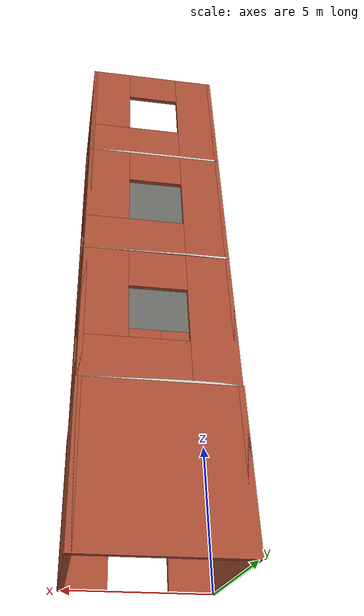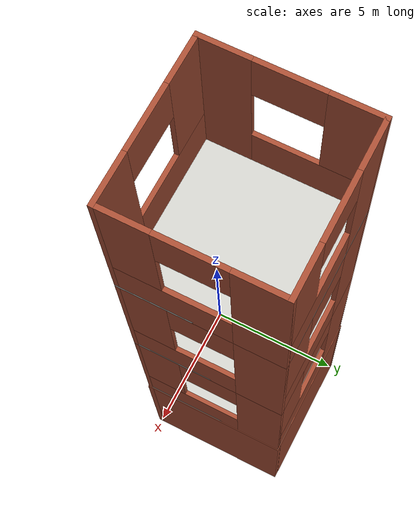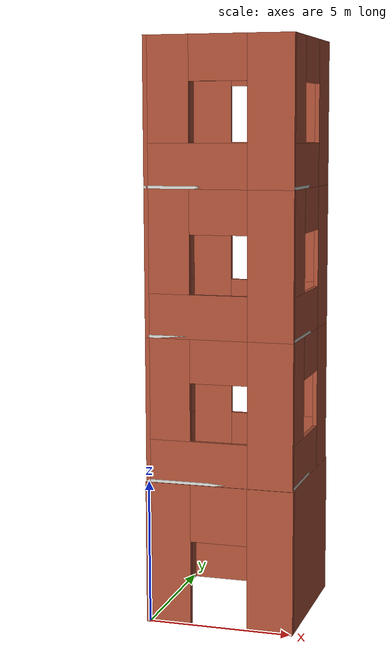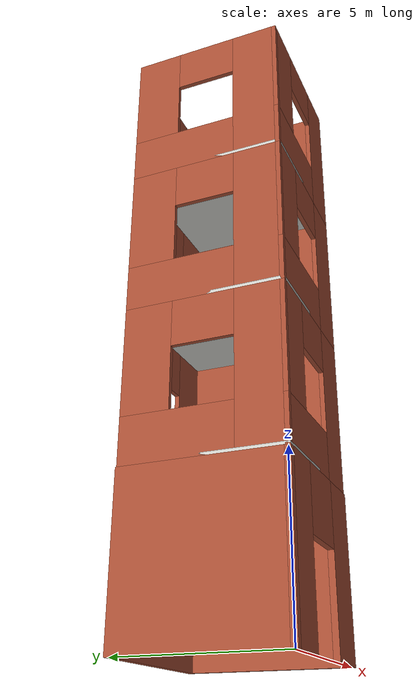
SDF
<?xml version='1.0'?>
<sdf version='1.6'>
  <model name='Challenge3_Building'>
    <pose frame=''>2.5 2.5 0 0 -0 0</pose>
    <link name='Floor_2'>
      <collision name='Floor_2_Collision'>
        <geometry>
          <box>
            <size>5.15 5.15 0.1</size>
          </box>
        </geometry>
        <pose frame=''>0 0 0.05 0 -0 0</pose>
      </collision>
      <visual name='Floor_2_Visual'>
        <pose frame=''>0 0 0.05 0 -0 0</pose>
        <geometry>
          <box>
            <size>5.15 5.15 0.1</size>
          </box>
        </geometry>
        <material>
          <script>
            <uri>file://materials/mbzirc.material</uri>
            <name>Gazebo/CeilingTiled</name>
          </script>
          <ambient>1 1 1 1</ambient>
        </material>
        <meta>
          <layer>1</layer>
        </meta>
      </visual>
      <pose frame=''>0 0 5 0 -0 0</pose>
    </link>
    <link name='Floor_3'>
      <collision name='Floor_3_Collision'>
        <geometry>
          <box>
            <size>5.15 5.15 0.1</size>
          </box>
        </geometry>
        <pose frame=''>0 0 0.05 0 -0 0</pose>
      </collision>
      <visual name='Floor_3_Visual'>
        <pose frame=''>0 0 0.05 0 -0 0</pose>
        <geometry>
          <box>
            <size>5.15 5.15 0.1</size>
          </box>
        </geometry>
        <material>
          <script>
            <uri>file://materials/mbzirc.material</uri>
            <name>Gazebo/CeilingTiled</name>
          </script>
          <ambient>1 1 1 1</ambient>
        </material>
        <meta>
          <layer>2</layer>
        </meta>
      </visual>
      <pose frame=''>0 0 10 0 -0 0</pose>
    </link>
    <link name='Floor_4'>
      <collision name='Floor_4_Collision'>
        <geometry>
          <box>
            <size>5.15 5.15 0.1</size>
          </box>
        </geometry>
        <pose frame=''>0 0 0.05 0 -0 0</pose>
      </collision>
      <visual name='Floor_4_Visual'>
        <pose frame=''>0 0 0.05 0 -0 0</pose>
        <geometry>
          <box>
            <size>5.15 5.15 0.1</size>
          </box>
        </geometry>
        <material>
          <script>
            <uri>file://materials/mbzirc.material</uri>
            <name>Gazebo/CeilingTiled</name>
          </script>
          <ambient>1 1 1 1</ambient>
        </material>
        <meta>
          <layer>3</layer>
        </meta>
      </visual>
      <pose frame=''>0 0 15 0 -0 0</pose>
    </link>
    <link name='Wall_01'>
      <collision name='Wall_01_Collision'>
        <geometry>
          <box>
            <size>5.2 0.2 5</size>
          </box>
        </geometry>
        <pose frame=''>0 0 2.5 0 -0 0</pose>
      </collision>
      <visual name='Wall_01_Visual'>
        <pose frame=''>0 0 2.5 0 -0 0</pose>
        <geometry>
          <box>
            <size>5.2 0.2 5</size>
          </box>
        </geometry>
        <material>
          <script>
            <uri>file://materials/mbzirc.material</uri>
            <name>Gazebo/Bricks</name>
          </script>
          <ambient>1 0.5 0 1</ambient>
        </material>
        <meta>
          <layer>0</layer>
        </meta>
      </visual>
      <pose frame=''>-2.5 0 0 0 -0 1.5708</pose>
    </link>
    <link name='Wall_02'>
      <collision name='Wall_02_Collision'>
        <geometry>
          <box>
            <size>5.2 0.2 5</size>
          </box>
        </geometry>
        <pose frame=''>0 0 2.5 0 -0 0</pose>
      </collision>
      <visual name='Wall_02_Visual'>
        <pose frame=''>0 0 2.5 0 -0 0</pose>
        <geometry>
          <box>
            <size>5.2 0.2 5</size>
          </box>
        </geometry>
        <material>
          <script>
            <uri>file://materials/mbzirc.material</uri>
            <name>Gazebo/Bricks</name>
          </script>
          <ambient>1 0.5 0 1</ambient>
        </material>
        <meta>
          <layer>0</layer>
        </meta>
      </visual>
      <pose frame=''>0 2.5 0 0 -0 0</pose>
    </link>
    <link name='Wall_03'>
      <collision name='Wall_03_Collision'>
        <geometry>
          <box>
            <size>5.2 0.2 5</size>
          </box>
        </geometry>
        <pose frame=''>0 0 2.5 0 -0 0</pose>
      </collision>
      <visual name='Wall_03_Visual'>
        <pose frame=''>0 0 2.5 0 -0 0</pose>
        <geometry>
          <box>
            <size>5.2 0.2 5</size>
          </box>
        </geometry>
        <material>
          <script>
            <uri>file://materials/mbzirc.material</uri>
            <name>Gazebo/Bricks</name>
          </script>
          <ambient>1 0.5 0 1</ambient>
        </material>
        <meta>
          <layer>0</layer>
        </meta>
      </visual>
      <pose frame=''>2.5 0 0 0 0 -1.5708</pose>
    </link>
    <link name='Wall_04'>
      <pose frame=''>0 -2.5 0 0 -0 3.14159</pose>
      <visual name='Wall_04_Visual_0'>
        <pose frame=''>-1.8 0 2.5 0 -0 0</pose>
        <geometry>
          <box>
            <size>1.6 0.2 5</size>
          </box>
        </geometry>
        <material>
          <script>
            <uri>file://materials/mbzirc.material</uri>
            <name>Gazebo/Bricks</name>
          </script>
          <ambient>1 0.5 0 1</ambient>
        </material>
        <meta>
          <layer>0</layer>
        </meta>
      </visual>
      <collision name='Wall_04_Collision_0'>
        <geometry>
          <box>
            <size>1.6 0.2 5</size>
          </box>
        </geometry>
        <pose frame=''>-1.8 0 2.5 0 -0 0</pose>
      </collision>
      <visual name='Wall_04_Visual_1'>
        <pose frame=''>1.8 0 2.5 0 -0 0</pose>
        <geometry>
          <box>
            <size>1.6 0.2 5</size>
          </box>
        </geometry>
        <material>
          <script>
            <uri>file://materials/mbzirc.material</uri>
            <name>Gazebo/Bricks</name>
          </script>
          <ambient>1 0.5 0 1</ambient>
        </material>
        <meta>
          <layer>0</layer>
        </meta>
      </visual>
      <collision name='Wall_04_Collision_1'>
        <geometry>
          <box>
            <size>1.6 0.2 5</size>
          </box>
        </geometry>
        <pose frame=''>1.8 0 2.5 0 -0 0</pose>
      </collision>
      <visual name='Wall_04_Visual_2'>
        <pose frame=''>0 0 4 0 -0 0</pose>
        <geometry>
          <box>
            <size>2 0.2 2</size>
          </box>
        </geometry>
        <material>
          <script>
            <uri>file://materials/mbzirc.material</uri>
            <name>Gazebo/Bricks</name>
          </script>
          <ambient>1 0.5 0 1</ambient>
        </material>
        <meta>
          <layer>0</layer>
        </meta>
      </visual>
      <collision name='Wall_04_Collision_2'>
        <geometry>
          <box>
            <size>2 0.2 2</size>
          </box>
        </geometry>
        <pose frame=''>0 0 4 0 -0 0</pose>
      </collision>
    </link>
    <link name='Wall_05'>
      <pose frame=''>-2.5 0 5 0 -0 1.5708</pose>
      <visual name='Wall_05_Visual_0'>
        <pose frame=''>-1.7875 0 2.5 0 -0 0</pose>
        <geometry>
          <box>
            <size>1.575 0.15 5</size>
          </box>
        </geometry>
        <material>
          <script>
            <uri>file://materials/mbzirc.material</uri>
            <name>Gazebo/Bricks</name>
          </script>
          <ambient>1 0.5 0 1</ambient>
        </material>
        <meta>
          <layer>1</layer>
        </meta>
      </visual>
      <collision name='Wall_05_Collision_0'>
        <geometry>
          <box>
            <size>1.575 0.15 5</size>
          </box>
        </geometry>
        <pose frame=''>-1.7875 0 2.5 0 -0 0</pose>
      </collision>
      <visual name='Wall_05_Visual_1'>
        <pose frame=''>0.7875 0 0.75 0 -0 0</pose>
        <geometry>
          <box>
            <size>3.575 0.15 1.5</size>
          </box>
        </geometry>
        <material>
          <script>
            <uri>file://materials/mbzirc.material</uri>
            <name>Gazebo/Bricks</name>
          </script>
          <ambient>1 0.5 0 1</ambient>
        </material>
        <meta>
          <layer>1</layer>
        </meta>
      </visual>
      <collision name='Wall_05_Collision_1'>
        <geometry>
          <box>
            <size>3.575 0.15 1.5</size>
          </box>
        </geometry>
        <pose frame=''>0.7875 0 0.75 0 -0 0</pose>
      </collision>
      <visual name='Wall_05_Visual_2'>
        <pose frame=''>1.7875 0 3.25 0 -0 0</pose>
        <geometry>
          <box>
            <size>1.575 0.15 3.5</size>
          </box>
        </geometry>
        <material>
          <script>
            <uri>file://materials/mbzirc.material</uri>
            <name>Gazebo/Bricks</name>
          </script>
          <ambient>1 0.5 0 1</ambient>
        </material>
        <meta>
          <layer>1</layer>
        </meta>
      </visual>
      <collision name='Wall_05_Collision_2'>
        <geometry>
          <box>
            <size>1.575 0.15 3.5</size>
          </box>
        </geometry>
        <pose frame=''>1.7875 0 3.25 0 -0 0</pose>
      </collision>
      <visual name='Wall_05_Visual_3'>
        <pose frame=''>0 0 4.25 0 -0 0</pose>
        <geometry>
          <box>
            <size>2 0.15 1.5</size>
          </box>
        </geometry>
        <material>
          <script>
            <uri>file://materials/mbzirc.material</uri>
            <name>Gazebo/Bricks</name>
          </script>
          <ambient>1 0.5 0 1</ambient>
        </material>
        <meta>
          <layer>1</layer>
        </meta>
      </visual>
      <collision name='Wall_05_Collision_3'>
        <geometry>
          <box>
            <size>2 0.15 1.5</size>
          </box>
        </geometry>
        <pose frame=''>0 0 4.25 0 -0 0</pose>
      </collision>
    </link>
    <link name='Wall_06'>
      <pose frame=''>0 2.5 5 0 -0 0</pose>
      <visual name='Wall_06_Visual_0'>
        <pose frame=''>-1.7875 0 2.5 0 -0 0</pose>
        <geometry>
          <box>
            <size>1.575 0.15 5</size>
          </box>
        </geometry>
        <material>
          <script>
            <uri>file://materials/mbzirc.material</uri>
            <name>Gazebo/Bricks</name>
          </script>
          <ambient>1 0.5 0 1</ambient>
        </material>
        <meta>
          <layer>1</layer>
        </meta>
      </visual>
      <collision name='Wall_06_Collision_0'>
        <geometry>
          <box>
            <size>1.575 0.15 5</size>
          </box>
        </geometry>
        <pose frame=''>-1.7875 0 2.5 0 -0 0</pose>
      </collision>
      <visual name='Wall_06_Visual_1'>
        <pose frame=''>0.7875 0 0.75 0 -0 0</pose>
        <geometry>
          <box>
            <size>3.575 0.15 1.5</size>
          </box>
        </geometry>
        <material>
          <script>
            <uri>file://materials/mbzirc.material</uri>
            <name>Gazebo/Bricks</name>
          </script>
          <ambient>1 0.5 0 1</ambient>
        </material>
        <meta>
          <layer>1</layer>
        </meta>
      </visual>
      <collision name='Wall_06_Collision_1'>
        <geometry>
          <box>
            <size>3.575 0.15 1.5</size>
          </box>
        </geometry>
        <pose frame=''>0.7875 0 0.75 0 -0 0</pose>
      </collision>
      <visual name='Wall_06_Visual_2'>
        <pose frame=''>1.7875 0 3.25 0 -0 0</pose>
        <geometry>
          <box>
            <size>1.575 0.15 3.5</size>
          </box>
        </geometry>
        <material>
          <script>
            <uri>file://materials/mbzirc.material</uri>
            <name>Gazebo/Bricks</name>
          </script>
          <ambient>1 0.5 0 1</ambient>
        </material>
        <meta>
          <layer>1</layer>
        </meta>
      </visual>
      <collision name='Wall_06_Collision_2'>
        <geometry>
          <box>
            <size>1.575 0.15 3.5</size>
          </box>
        </geometry>
        <pose frame=''>1.7875 0 3.25 0 -0 0</pose>
      </collision>
      <visual name='Wall_06_Visual_3'>
        <pose frame=''>0 0 4.25 0 -0 0</pose>
        <geometry>
          <box>
            <size>2 0.15 1.5</size>
          </box>
        </geometry>
        <material>
          <script>
            <uri>file://materials/mbzirc.material</uri>
            <name>Gazebo/Bricks</name>
          </script>
          <ambient>1 0.5 0 1</ambient>
        </material>
        <meta>
          <layer>1</layer>
        </meta>
      </visual>
      <collision name='Wall_06_Collision_3'>
        <geometry>
          <box>
            <size>2 0.15 1.5</size>
          </box>
        </geometry>
        <pose frame=''>0 0 4.25 0 -0 0</pose>
      </collision>
    </link>
    <link name='Wall_07'>
      <pose frame=''>2.5 0 5 0 0 -1.5708</pose>
      <visual name='Wall_07_Visual_0'>
        <pose frame=''>-1.7875 0 2.5 0 -0 0</pose>
        <geometry>
          <box>
            <size>1.575 0.15 5</size>
          </box>
        </geometry>
        <material>
          <script>
            <uri>file://materials/mbzirc.material</uri>
            <name>Gazebo/Bricks</name>
          </script>
          <ambient>1 0.5 0 1</ambient>
        </material>
        <meta>
          <layer>1</layer>
        </meta>
      </visual>
      <collision name='Wall_07_Collision_0'>
        <geometry>
          <box>
            <size>1.575 0.15 5</size>
          </box>
        </geometry>
        <pose frame=''>-1.7875 0 2.5 0 -0 0</pose>
      </collision>
      <visual name='Wall_07_Visual_1'>
        <pose frame=''>0.7875 0 0.75 0 -0 0</pose>
        <geometry>
          <box>
            <size>3.575 0.15 1.5</size>
          </box>
        </geometry>
        <material>
          <script>
            <uri>file://materials/mbzirc.material</uri>
            <name>Gazebo/Bricks</name>
          </script>
          <ambient>1 0.5 0 1</ambient>
        </material>
        <meta>
          <layer>1</layer>
        </meta>
      </visual>
      <collision name='Wall_07_Collision_1'>
        <geometry>
          <box>
            <size>3.575 0.15 1.5</size>
          </box>
        </geometry>
        <pose frame=''>0.7875 0 0.75 0 -0 0</pose>
      </collision>
      <visual name='Wall_07_Visual_2'>
        <pose frame=''>1.7875 0 3.25 0 -0 0</pose>
        <geometry>
          <box>
            <size>1.575 0.15 3.5</size>
          </box>
        </geometry>
        <material>
          <script>
            <uri>file://materials/mbzirc.material</uri>
            <name>Gazebo/Bricks</name>
          </script>
          <ambient>1 0.5 0 1</ambient>
        </material>
        <meta>
          <layer>1</layer>
        </meta>
      </visual>
      <collision name='Wall_07_Collision_2'>
        <geometry>
          <box>
            <size>1.575 0.15 3.5</size>
          </box>
        </geometry>
        <pose frame=''>1.7875 0 3.25 0 -0 0</pose>
      </collision>
      <visual name='Wall_07_Visual_3'>
        <pose frame=''>0 0 4.25 0 -0 0</pose>
        <geometry>
          <box>
            <size>2 0.15 1.5</size>
          </box>
        </geometry>
        <material>
          <script>
            <uri>file://materials/mbzirc.material</uri>
            <name>Gazebo/Bricks</name>
          </script>
          <ambient>1 0.5 0 1</ambient>
        </material>
        <meta>
          <layer>1</layer>
        </meta>
      </visual>
      <collision name='Wall_07_Collision_3'>
        <geometry>
          <box>
            <size>2 0.15 1.5</size>
          </box>
        </geometry>
        <pose frame=''>0 0 4.25 0 -0 0</pose>
      </collision>
    </link>
    <link name='Wall_08'>
      <pose frame=''>0 -2.5 5 0 -0 3.14159</pose>
      <visual name='Wall_08_Visual_0'>
        <pose frame=''>-1.7875 0 2.5 0 -0 0</pose>
        <geometry>
          <box>
            <size>1.575 0.15 5</size>
          </box>
        </geometry>
        <material>
          <script>
            <uri>file://materials/mbzirc.material</uri>
            <name>Gazebo/Bricks</name>
          </script>
          <ambient>1 0.5 0 1</ambient>
        </material>
        <meta>
          <layer>1</layer>
        </meta>
      </visual>
      <collision name='Wall_08_Collision_0'>
        <geometry>
          <box>
            <size>1.575 0.15 5</size>
          </box>
        </geometry>
        <pose frame=''>-1.7875 0 2.5 0 -0 0</pose>
      </collision>
      <visual name='Wall_08_Visual_1'>
        <pose frame=''>0.7875 0 0.75 0 -0 0</pose>
        <geometry>
          <box>
            <size>3.575 0.15 1.5</size>
          </box>
        </geometry>
        <material>
          <script>
            <uri>file://materials/mbzirc.material</uri>
            <name>Gazebo/Bricks</name>
          </script>
          <ambient>1 0.5 0 1</ambient>
        </material>
        <meta>
          <layer>1</layer>
        </meta>
      </visual>
      <collision name='Wall_08_Collision_1'>
        <geometry>
          <box>
            <size>3.575 0.15 1.5</size>
          </box>
        </geometry>
        <pose frame=''>0.7875 0 0.75 0 -0 0</pose>
      </collision>
      <visual name='Wall_08_Visual_2'>
        <pose frame=''>1.7875 0 3.25 0 -0 0</pose>
        <geometry>
          <box>
            <size>1.575 0.15 3.5</size>
          </box>
        </geometry>
        <material>
          <script>
            <uri>file://materials/mbzirc.material</uri>
            <name>Gazebo/Bricks</name>
          </script>
          <ambient>1 0.5 0 1</ambient>
        </material>
        <meta>
          <layer>1</layer>
        </meta>
      </visual>
      <collision name='Wall_08_Collision_2'>
        <geometry>
          <box>
            <size>1.575 0.15 3.5</size>
          </box>
        </geometry>
        <pose frame=''>1.7875 0 3.25 0 -0 0</pose>
      </collision>
      <visual name='Wall_08_Visual_3'>
        <pose frame=''>0 0 4.25 0 -0 0</pose>
        <geometry>
          <box>
            <size>2 0.15 1.5</size>
          </box>
        </geometry>
        <material>
          <script>
            <uri>file://materials/mbzirc.material</uri>
            <name>Gazebo/Bricks</name>
          </script>
          <ambient>1 0.5 0 1</ambient>
        </material>
        <meta>
          <layer>1</layer>
        </meta>
      </visual>
      <collision name='Wall_08_Collision_3'>
        <geometry>
          <box>
            <size>2 0.15 1.5</size>
          </box>
        </geometry>
        <pose frame=''>0 0 4.25 0 -0 0</pose>
      </collision>
    </link>
    <link name='Wall_09'>
      <pose frame=''>-2.5 0 10 0 -0 1.5708</pose>
      <visual name='Wall_09_Visual_0'>
        <pose frame=''>-1.7875 0 2.5 0 -0 0</pose>
        <geometry>
          <box>
            <size>1.575 0.15 5</size>
          </box>
        </geometry>
        <material>
          <script>
            <uri>file://materials/mbzirc.material</uri>
            <name>Gazebo/Bricks</name>
          </script>
          <ambient>1 0.5 0 1</ambient>
        </material>
        <meta>
          <layer>2</layer>
        </meta>
      </visual>
      <collision name='Wall_09_Collision_0'>
        <geometry>
          <box>
            <size>1.575 0.15 5</size>
          </box>
        </geometry>
        <pose frame=''>-1.7875 0 2.5 0 -0 0</pose>
      </collision>
      <visual name='Wall_09_Visual_1'>
        <pose frame=''>0.7875 0 0.75 0 -0 0</pose>
        <geometry>
          <box>
            <size>3.575 0.15 1.5</size>
          </box>
        </geometry>
        <material>
          <script>
            <uri>file://materials/mbzirc.material</uri>
            <name>Gazebo/Bricks</name>
          </script>
          <ambient>1 0.5 0 1</ambient>
        </material>
        <meta>
          <layer>2</layer>
        </meta>
      </visual>
      <collision name='Wall_09_Collision_1'>
        <geometry>
          <box>
            <size>3.575 0.15 1.5</size>
          </box>
        </geometry>
        <pose frame=''>0.7875 0 0.75 0 -0 0</pose>
      </collision>
      <visual name='Wall_09_Visual_2'>
        <pose frame=''>1.7875 0 3.25 0 -0 0</pose>
        <geometry>
          <box>
            <size>1.575 0.15 3.5</size>
          </box>
        </geometry>
        <material>
          <script>
            <uri>file://materials/mbzirc.material</uri>
            <name>Gazebo/Bricks</name>
          </script>
          <ambient>1 0.5 0 1</ambient>
        </material>
        <meta>
          <layer>2</layer>
        </meta>
      </visual>
      <collision name='Wall_09_Collision_2'>
        <geometry>
          <box>
            <size>1.575 0.15 3.5</size>
          </box>
        </geometry>
        <pose frame=''>1.7875 0 3.25 0 -0 0</pose>
      </collision>
      <visual name='Wall_09_Visual_3'>
        <pose frame=''>0 0 4.25 0 -0 0</pose>
        <geometry>
          <box>
            <size>2 0.15 1.5</size>
          </box>
        </geometry>
        <material>
          <script>
            <uri>file://materials/mbzirc.material</uri>
            <name>Gazebo/Bricks</name>
          </script>
          <ambient>1 0.5 0 1</ambient>
        </material>
        <meta>
          <layer>2</layer>
        </meta>
      </visual>
      <collision name='Wall_09_Collision_3'>
        <geometry>
          <box>
            <size>2 0.15 1.5</size>
          </box>
        </geometry>
        <pose frame=''>0 0 4.25 0 -0 0</pose>
      </collision>
    </link>
    <link name='Wall_10'>
      <pose frame=''>0 2.5 10 0 -0 0</pose>
      <visual name='Wall_10_Visual_0'>
        <pose frame=''>-1.7875 0 2.5 0 -0 0</pose>
        <geometry>
          <box>
            <size>1.575 0.15 5</size>
          </box>
        </geometry>
        <material>
          <script>
            <uri>file://materials/mbzirc.material</uri>
            <name>Gazebo/Bricks</name>
          </script>
          <ambient>1 0.5 0 1</ambient>
        </material>
        <meta>
          <layer>2</layer>
        </meta>
      </visual>
      <collision name='Wall_10_Collision_0'>
        <geometry>
          <box>
            <size>1.575 0.15 5</size>
          </box>
        </geometry>
        <pose frame=''>-1.7875 0 2.5 0 -0 0</pose>
      </collision>
      <visual name='Wall_10_Visual_1'>
        <pose frame=''>0.7875 0 0.75 0 -0 0</pose>
        <geometry>
          <box>
            <size>3.575 0.15 1.5</size>
          </box>
        </geometry>
        <material>
          <script>
            <uri>file://materials/mbzirc.material</uri>
            <name>Gazebo/Bricks</name>
          </script>
          <ambient>1 0.5 0 1</ambient>
        </material>
        <meta>
          <layer>2</layer>
        </meta>
      </visual>
      <collision name='Wall_10_Collision_1'>
        <geometry>
          <box>
            <size>3.575 0.15 1.5</size>
          </box>
        </geometry>
        <pose frame=''>0.7875 0 0.75 0 -0 0</pose>
      </collision>
      <visual name='Wall_10_Visual_2'>
        <pose frame=''>1.7875 0 3.25 0 -0 0</pose>
        <geometry>
          <box>
            <size>1.575 0.15 3.5</size>
          </box>
        </geometry>
        <material>
          <script>
            <uri>file://materials/mbzirc.material</uri>
            <name>Gazebo/Bricks</name>
          </script>
          <ambient>1 0.5 0 1</ambient>
        </material>
        <meta>
          <layer>2</layer>
        </meta>
      </visual>
      <collision name='Wall_10_Collision_2'>
        <geometry>
          <box>
            <size>1.575 0.15 3.5</size>
          </box>
        </geometry>
        <pose frame=''>1.7875 0 3.25 0 -0 0</pose>
      </collision>
      <visual name='Wall_10_Visual_3'>
        <pose frame=''>0 0 4.25 0 -0 0</pose>
        <geometry>
          <box>
            <size>2 0.15 1.5</size>
          </box>
        </geometry>
        <material>
          <script>
            <uri>file://materials/mbzirc.material</uri>
            <name>Gazebo/Bricks</name>
          </script>
          <ambient>1 0.5 0 1</ambient>
        </material>
        <meta>
          <layer>2</layer>
        </meta>
      </visual>
      <collision name='Wall_10_Collision_3'>
        <geometry>
          <box>
            <size>2 0.15 1.5</size>
          </box>
        </geometry>
        <pose frame=''>0 0 4.25 0 -0 0</pose>
      </collision>
    </link>
    <link name='Wall_11'>
      <pose frame=''>2.5 0 10 0 0 -1.5708</pose>
      <visual name='Wall_11_Visual_0'>
        <pose frame=''>-1.7875 0 2.5 0 -0 0</pose>
        <geometry>
          <box>
            <size>1.575 0.15 5</size>
          </box>
        </geometry>
        <material>
          <script>
            <uri>file://materials/mbzirc.material</uri>
            <name>Gazebo/Bricks</name>
          </script>
          <ambient>1 0.5 0 1</ambient>
        </material>
        <meta>
          <layer>2</layer>
        </meta>
      </visual>
      <collision name='Wall_11_Collision_0'>
        <geometry>
          <box>
            <size>1.575 0.15 5</size>
          </box>
        </geometry>
        <pose frame=''>-1.7875 0 2.5 0 -0 0</pose>
      </collision>
      <visual name='Wall_11_Visual_1'>
        <pose frame=''>0.7875 0 0.75 0 -0 0</pose>
        <geometry>
          <box>
            <size>3.575 0.15 1.5</size>
          </box>
        </geometry>
        <material>
          <script>
            <uri>file://materials/mbzirc.material</uri>
            <name>Gazebo/Bricks</name>
          </script>
          <ambient>1 0.5 0 1</ambient>
        </material>
        <meta>
          <layer>2</layer>
        </meta>
      </visual>
      <collision name='Wall_11_Collision_1'>
        <geometry>
          <box>
            <size>3.575 0.15 1.5</size>
          </box>
        </geometry>
        <pose frame=''>0.7875 0 0.75 0 -0 0</pose>
      </collision>
      <visual name='Wall_11_Visual_2'>
        <pose frame=''>1.7875 0 3.25 0 -0 0</pose>
        <geometry>
          <box>
            <size>1.575 0.15 3.5</size>
          </box>
        </geometry>
        <material>
          <script>
            <uri>file://materials/mbzirc.material</uri>
            <name>Gazebo/Bricks</name>
          </script>
          <ambient>1 0.5 0 1</ambient>
        </material>
        <meta>
          <layer>2</layer>
        </meta>
      </visual>
      <collision name='Wall_11_Collision_2'>
        <geometry>
          <box>
            <size>1.575 0.15 3.5</size>
          </box>
        </geometry>
        <pose frame=''>1.7875 0 3.25 0 -0 0</pose>
      </collision>
      <visual name='Wall_11_Visual_3'>
        <pose frame=''>0 0 4.25 0 -0 0</pose>
        <geometry>
          <box>
            <size>2 0.15 1.5</size>
          </box>
        </geometry>
        <material>
          <script>
            <uri>file://materials/mbzirc.material</uri>
            <name>Gazebo/Bricks</name>
          </script>
          <ambient>1 0.5 0 1</ambient>
        </material>
        <meta>
          <layer>2</layer>
        </meta>
      </visual>
      <collision name='Wall_11_Collision_3'>
        <geometry>
          <box>
            <size>2 0.15 1.5</size>
          </box>
        </geometry>
        <pose frame=''>0 0 4.25 0 -0 0</pose>
      </collision>
    </link>
    <link name='Wall_12'>
      <pose frame=''>0 -2.5 10 0 -0 3.14159</pose>
      <visual name='Wall_12_Visual_0'>
        <pose frame=''>-1.7875 0 2.5 0 -0 0</pose>
        <geometry>
          <box>
            <size>1.575 0.15 5</size>
          </box>
        </geometry>
        <material>
          <script>
            <uri>file://materials/mbzirc.material</uri>
            <name>Gazebo/Bricks</name>
          </script>
          <ambient>1 0.5 0 1</ambient>
        </material>
        <meta>
          <layer>2</layer>
        </meta>
      </visual>
      <collision name='Wall_12_Collision_0'>
        <geometry>
          <box>
            <size>1.575 0.15 5</size>
          </box>
        </geometry>
        <pose frame=''>-1.7875 0 2.5 0 -0 0</pose>
      </collision>
      <visual name='Wall_12_Visual_1'>
        <pose frame=''>0.7875 0 0.75 0 -0 0</pose>
        <geometry>
          <box>
            <size>3.575 0.15 1.5</size>
          </box>
        </geometry>
        <material>
          <script>
            <uri>file://materials/mbzirc.material</uri>
            <name>Gazebo/Bricks</name>
          </script>
          <ambient>1 0.5 0 1</ambient>
        </material>
        <meta>
          <layer>2</layer>
        </meta>
      </visual>
      <collision name='Wall_12_Collision_1'>
        <geometry>
          <box>
            <size>3.575 0.15 1.5</size>
          </box>
        </geometry>
        <pose frame=''>0.7875 0 0.75 0 -0 0</pose>
      </collision>
      <visual name='Wall_12_Visual_2'>
        <pose frame=''>1.7875 0 3.25 0 -0 0</pose>
        <geometry>
          <box>
            <size>1.575 0.15 3.5</size>
          </box>
        </geometry>
        <material>
          <script>
            <uri>file://materials/mbzirc.material</uri>
            <name>Gazebo/Bricks</name>
          </script>
          <ambient>1 0.5 0 1</ambient>
        </material>
        <meta>
          <layer>2</layer>
        </meta>
      </visual>
      <collision name='Wall_12_Collision_2'>
        <geometry>
          <box>
            <size>1.575 0.15 3.5</size>
          </box>
        </geometry>
        <pose frame=''>1.7875 0 3.25 0 -0 0</pose>
      </collision>
      <visual name='Wall_12_Visual_3'>
        <pose frame=''>0 0 4.25 0 -0 0</pose>
        <geometry>
          <box>
            <size>2 0.15 1.5</size>
          </box>
        </geometry>
        <material>
          <script>
            <uri>file://materials/mbzirc.material</uri>
            <name>Gazebo/Bricks</name>
          </script>
          <ambient>1 0.5 0 1</ambient>
        </material>
        <meta>
          <layer>2</layer>
        </meta>
      </visual>
      <collision name='Wall_12_Collision_3'>
        <geometry>
          <box>
            <size>2 0.15 1.5</size>
          </box>
        </geometry>
        <pose frame=''>0 0 4.25 0 -0 0</pose>
      </collision>
    </link>
    <link name='Wall_13'>
      <pose frame=''>-2.5 0 15 0 -0 1.5708</pose>
      <visual name='Wall_13_Visual_0'>
        <pose frame=''>-1.7875 0 2.5 0 -0 0</pose>
        <geometry>
          <box>
            <size>1.575 0.15 5</size>
          </box>
        </geometry>
        <material>
          <script>
            <uri>file://materials/mbzirc.material</uri>
            <name>Gazebo/Bricks</name>
          </script>
          <ambient>1 0.5 0 1</ambient>
        </material>
        <meta>
          <layer>3</layer>
        </meta>
      </visual>
      <collision name='Wall_13_Collision_0'>
        <geometry>
          <box>
            <size>1.575 0.15 5</size>
          </box>
        </geometry>
        <pose frame=''>-1.7875 0 2.5 0 -0 0</pose>
      </collision>
      <visual name='Wall_13_Visual_1'>
        <pose frame=''>0.7875 0 0.75 0 -0 0</pose>
        <geometry>
          <box>
            <size>3.575 0.15 1.5</size>
          </box>
        </geometry>
        <material>
          <script>
            <uri>file://materials/mbzirc.material</uri>
            <name>Gazebo/Bricks</name>
          </script>
          <ambient>1 0.5 0 1</ambient>
        </material>
        <meta>
          <layer>3</layer>
        </meta>
      </visual>
      <collision name='Wall_13_Collision_1'>
        <geometry>
          <box>
            <size>3.575 0.15 1.5</size>
          </box>
        </geometry>
        <pose frame=''>0.7875 0 0.75 0 -0 0</pose>
      </collision>
      <visual name='Wall_13_Visual_2'>
        <pose frame=''>1.7875 0 3.25 0 -0 0</pose>
        <geometry>
          <box>
            <size>1.575 0.15 3.5</size>
          </box>
        </geometry>
        <material>
          <script>
            <uri>file://materials/mbzirc.material</uri>
            <name>Gazebo/Bricks</name>
          </script>
          <ambient>1 0.5 0 1</ambient>
        </material>
        <meta>
          <layer>3</layer>
        </meta>
      </visual>
      <collision name='Wall_13_Collision_2'>
        <geometry>
          <box>
            <size>1.575 0.15 3.5</size>
          </box>
        </geometry>
        <pose frame=''>1.7875 0 3.25 0 -0 0</pose>
      </collision>
      <visual name='Wall_13_Visual_3'>
        <pose frame=''>0 0 4.25 0 -0 0</pose>
        <geometry>
          <box>
            <size>2 0.15 1.5</size>
          </box>
        </geometry>
        <material>
          <script>
            <uri>file://materials/mbzirc.material</uri>
            <name>Gazebo/Bricks</name>
          </script>
          <ambient>1 0.5 0 1</ambient>
        </material>
        <meta>
          <layer>3</layer>
        </meta>
      </visual>
      <collision name='Wall_13_Collision_3'>
        <geometry>
          <box>
            <size>2 0.15 1.5</size>
          </box>
        </geometry>
        <pose frame=''>0 0 4.25 0 -0 0</pose>
      </collision>
    </link>
    <link name='Wall_14'>
      <pose frame=''>0 2.5 15 0 -0 0</pose>
      <visual name='Wall_14_Visual_0'>
        <pose frame=''>-1.7875 0 2.5 0 -0 0</pose>
        <geometry>
          <box>
            <size>1.575 0.15 5</size>
          </box>
        </geometry>
        <material>
          <script>
            <uri>file://materials/mbzirc.material</uri>
            <name>Gazebo/Bricks</name>
          </script>
          <ambient>1 0.5 0 1</ambient>
        </material>
        <meta>
          <layer>3</layer>
        </meta>
      </visual>
      <collision name='Wall_14_Collision_0'>
        <geometry>
          <box>
            <size>1.575 0.15 5</size>
          </box>
        </geometry>
        <pose frame=''>-1.7875 0 2.5 0 -0 0</pose>
      </collision>
      <visual name='Wall_14_Visual_1'>
        <pose frame=''>0.7875 0 0.75 0 -0 0</pose>
        <geometry>
          <box>
            <size>3.575 0.15 1.5</size>
          </box>
        </geometry>
        <material>
          <script>
            <uri>file://materials/mbzirc.material</uri>
            <name>Gazebo/Bricks</name>
          </script>
          <ambient>1 0.5 0 1</ambient>
        </material>
        <meta>
          <layer>3</layer>
        </meta>
      </visual>
      <collision name='Wall_14_Collision_1'>
        <geometry>
          <box>
            <size>3.575 0.15 1.5</size>
          </box>
        </geometry>
        <pose frame=''>0.7875 0 0.75 0 -0 0</pose>
      </collision>
      <visual name='Wall_14_Visual_2'>
        <pose frame=''>1.7875 0 3.25 0 -0 0</pose>
        <geometry>
          <box>
            <size>1.575 0.15 3.5</size>
          </box>
        </geometry>
        <material>
          <script>
            <uri>file://materials/mbzirc.material</uri>
            <name>Gazebo/Bricks</name>
          </script>
          <ambient>1 0.5 0 1</ambient>
        </material>
        <meta>
          <layer>3</layer>
        </meta>
      </visual>
      <collision name='Wall_14_Collision_2'>
        <geometry>
          <box>
            <size>1.575 0.15 3.5</size>
          </box>
        </geometry>
        <pose frame=''>1.7875 0 3.25 0 -0 0</pose>
      </collision>
      <visual name='Wall_14_Visual_3'>
        <pose frame=''>0 0 4.25 0 -0 0</pose>
        <geometry>
          <box>
            <size>2 0.15 1.5</size>
          </box>
        </geometry>
        <material>
          <script>
            <uri>file://materials/mbzirc.material</uri>
            <name>Gazebo/Bricks</name>
          </script>
          <ambient>1 0.5 0 1</ambient>
        </material>
        <meta>
          <layer>3</layer>
        </meta>
      </visual>
      <collision name='Wall_14_Collision_3'>
        <geometry>
          <box>
            <size>2 0.15 1.5</size>
          </box>
        </geometry>
        <pose frame=''>0 0 4.25 0 -0 0</pose>
      </collision>
    </link>
    <link name='Wall_15'>
      <pose frame=''>2.5 0 15 0 0 -1.5708</pose>
      <visual name='Wall_15_Visual_0'>
        <pose frame=''>-1.7875 0 2.5 0 -0 0</pose>
        <geometry>
          <box>
            <size>1.575 0.15 5</size>
          </box>
        </geometry>
        <material>
          <script>
            <uri>file://materials/mbzirc.material</uri>
            <name>Gazebo/Bricks</name>
          </script>
          <ambient>1 0.5 0 1</ambient>
        </material>
        <meta>
          <layer>3</layer>
        </meta>
      </visual>
      <collision name='Wall_15_Collision_0'>
        <geometry>
          <box>
            <size>1.575 0.15 5</size>
          </box>
        </geometry>
        <pose frame=''>-1.7875 0 2.5 0 -0 0</pose>
      </collision>
      <visual name='Wall_15_Visual_1'>
        <pose frame=''>0.7875 0 0.75 0 -0 0</pose>
        <geometry>
          <box>
            <size>3.575 0.15 1.5</size>
          </box>
        </geometry>
        <material>
          <script>
            <uri>file://materials/mbzirc.material</uri>
            <name>Gazebo/Bricks</name>
          </script>
          <ambient>1 0.5 0 1</ambient>
        </material>
        <meta>
          <layer>3</layer>
        </meta>
      </visual>
      <collision name='Wall_15_Collision_1'>
        <geometry>
          <box>
            <size>3.575 0.15 1.5</size>
          </box>
        </geometry>
        <pose frame=''>0.7875 0 0.75 0 -0 0</pose>
      </collision>
      <visual name='Wall_15_Visual_2'>
        <pose frame=''>1.7875 0 3.25 0 -0 0</pose>
        <geometry>
          <box>
            <size>1.575 0.15 3.5</size>
          </box>
        </geometry>
        <material>
          <script>
            <uri>file://materials/mbzirc.material</uri>
            <name>Gazebo/Bricks</name>
          </script>
          <ambient>1 0.5 0 1</ambient>
        </material>
        <meta>
          <layer>3</layer>
        </meta>
      </visual>
      <collision name='Wall_15_Collision_2'>
        <geometry>
          <box>
            <size>1.575 0.15 3.5</size>
          </box>
        </geometry>
        <pose frame=''>1.7875 0 3.25 0 -0 0</pose>
      </collision>
      <visual name='Wall_15_Visual_3'>
        <pose frame=''>0 0 4.25 0 -0 0</pose>
        <geometry>
          <box>
            <size>2 0.15 1.5</size>
          </box>
        </geometry>
        <material>
          <script>
            <uri>file://materials/mbzirc.material</uri>
            <name>Gazebo/Bricks</name>
          </script>
          <ambient>1 0.5 0 1</ambient>
        </material>
        <meta>
          <layer>3</layer>
        </meta>
      </visual>
      <collision name='Wall_15_Collision_3'>
        <geometry>
          <box>
            <size>2 0.15 1.5</size>
          </box>
        </geometry>
        <pose frame=''>0 0 4.25 0 -0 0</pose>
      </collision>
    </link>
    <link name='Wall_16'>
      <pose frame=''>0 -2.5 15 0 -0 3.14159</pose>
      <visual name='Wall_16_Visual_0'>
        <pose frame=''>-1.7875 0 2.5 0 -0 0</pose>
        <geometry>
          <box>
            <size>1.575 0.15 5</size>
          </box>
        </geometry>
        <material>
          <script>
            <uri>file://materials/mbzirc.material</uri>
            <name>Gazebo/Bricks</name>
          </script>
          <ambient>1 0.5 0 1</ambient>
        </material>
        <meta>
          <layer>3</layer>
        </meta>
      </visual>
      <collision name='Wall_16_Collision_0'>
        <geometry>
          <box>
            <size>1.575 0.15 5</size>
          </box>
        </geometry>
        <pose frame=''>-1.7875 0 2.5 0 -0 0</pose>
      </collision>
      <visual name='Wall_16_Visual_1'>
        <pose frame=''>0.7875 0 0.75 0 -0 0</pose>
        <geometry>
          <box>
            <size>3.575 0.15 1.5</size>
          </box>
        </geometry>
        <material>
          <script>
            <uri>file://materials/mbzirc.material</uri>
            <name>Gazebo/Bricks</name>
          </script>
          <ambient>1 0.5 0 1</ambient>
        </material>
        <meta>
          <layer>3</layer>
        </meta>
      </visual>
      <collision name='Wall_16_Collision_1'>
        <geometry>
          <box>
            <size>3.575 0.15 1.5</size>
          </box>
        </geometry>
        <pose frame=''>0.7875 0 0.75 0 -0 0</pose>
      </collision>
      <visual name='Wall_16_Visual_2'>
        <pose frame=''>1.7875 0 3.25 0 -0 0</pose>
        <geometry>
          <box>
            <size>1.575 0.15 3.5</size>
          </box>
        </geometry>
        <material>
          <script>
            <uri>file://materials/mbzirc.material</uri>
            <name>Gazebo/Bricks</name>
          </script>
          <ambient>1 0.5 0 1</ambient>
        </material>
        <meta>
          <layer>3</layer>
        </meta>
      </visual>
      <collision name='Wall_16_Collision_2'>
        <geometry>
          <box>
            <size>1.575 0.15 3.5</size>
          </box>
        </geometry>
        <pose frame=''>1.7875 0 3.25 0 -0 0</pose>
      </collision>
      <visual name='Wall_16_Visual_3'>
        <pose frame=''>0 0 4.25 0 -0 0</pose>
        <geometry>
          <box>
            <size>2 0.15 1.5</size>
          </box>
        </geometry>
        <material>
          <script>
            <uri>file://materials/mbzirc.material</uri>
            <name>Gazebo/Bricks</name>
          </script>
          <ambient>1 0.5 0 1</ambient>
        </material>
        <meta>
          <layer>3</layer>
        </meta>
      </visual>
      <collision name='Wall_16_Collision_3'>
        <geometry>
          <box>
            <size>2 0.15 1.5</size>
          </box>
        </geometry>
        <pose frame=''>0 0 4.25 0 -0 0</pose>
      </collision>
    </link>
    <static>1</static>
  </model>
</sdf>
